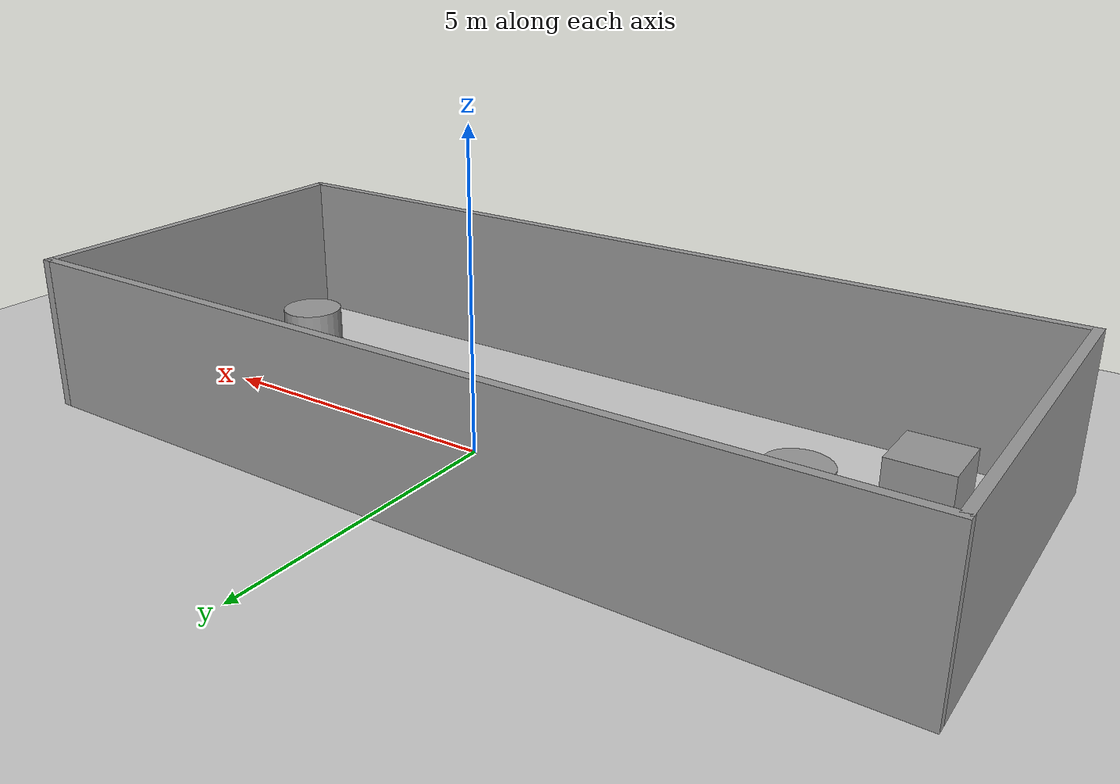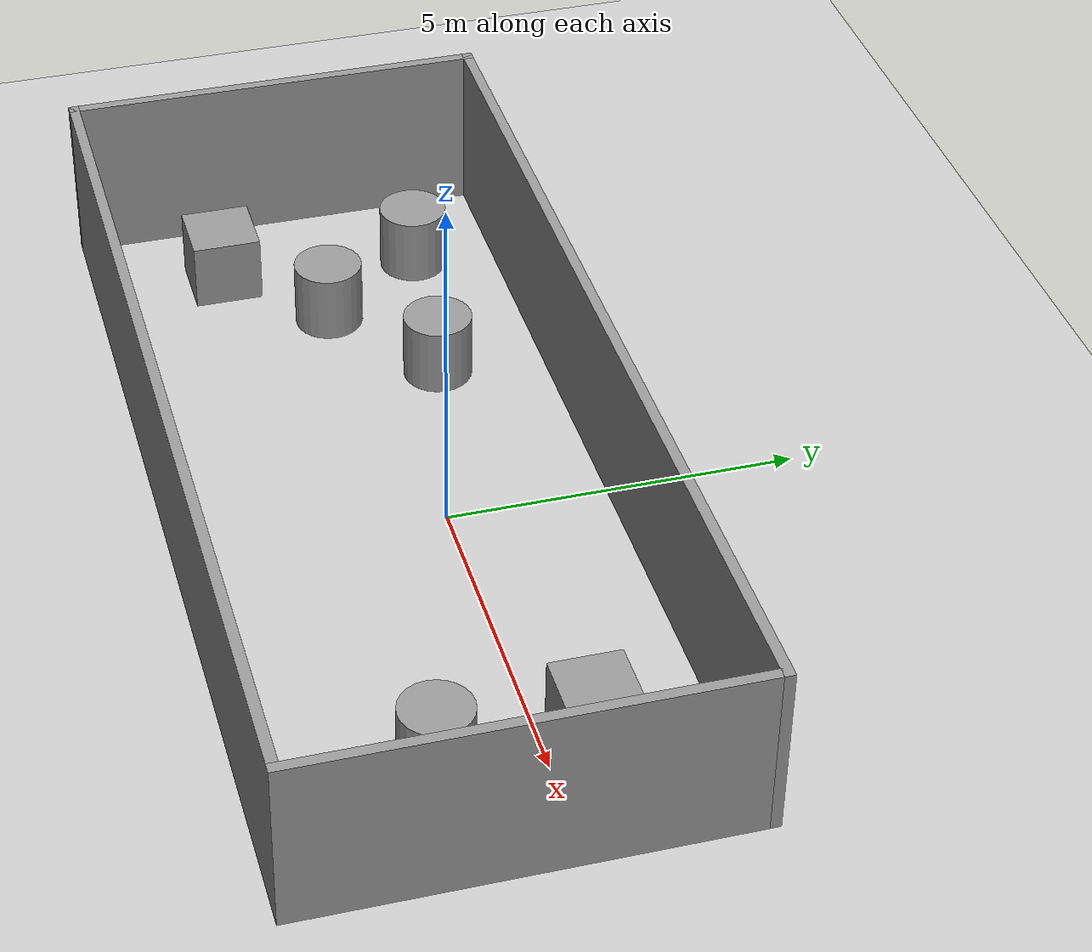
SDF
<sdf version="1.7">
 <world name="default">
  <light name="sun" type="directional">
   <pose>0 0 10 0 -0 0</pose>
   <diffuse>0.8 0.8 0.8 1</diffuse>
   <specular>0.2 0.2 0.2 1</specular>
   <attenuation>
    <range>1000</range>
    <constant>0.9</constant>
    <linear>0.01</linear>
    <quadratic>0.001</quadratic>
   </attenuation>
   <direction>-0.5 0.1 -0.9</direction>
   <spot><inner_angle>0</inner_angle><outer_angle>0</outer_angle><falloff>0</falloff></spot>
  </light>
  <model name="ground_plane">
   <static>1</static>
   <link name="link">
    <collision name="collision">
     <geometry><plane><normal>0 0 1</normal><size>100 100</size></plane></geometry>
     <surface>
      <contact><collide_bitmask>65535</collide_bitmask></contact>
      <friction><ode><mu>100</mu><mu2>50</mu2></ode></friction>
     </surface>
    </collision>
    <visual name="visual">
     <cast_shadows>0</cast_shadows>
     <geometry><plane><normal>0 0 1</normal><size>100 100</size></plane></geometry>
     <material>
      <script><uri>file://media/materials/scripts/gazebo.material</uri><name>Gazebo/Grey</name></script>
     </material>
    </visual>
   </link>
  </model>
  <gravity>0 0 -9.8</gravity>
  <magnetic_field>6e-06 2.3e-05 -4.2e-05</magnetic_field>
  <atmosphere type="adiabatic"/>
  <physics type="ode">
   <max_step_size>0.001</max_step_size>
   <real_time_factor>1</real_time_factor>
   <real_time_update_rate>1000</real_time_update_rate>
  </physics>
  <scene><ambient>0.4 0.4 0.4 1</ambient><background>0.7 0.7 0.7 1</background><shadows>1</shadows></scene>
  <spherical_coordinates>
   <surface_model>EARTH_WGS84</surface_model>
   <latitude_deg>0</latitude_deg>
   <longitude_deg>0</longitude_deg>
   <elevation>0</elevation>
   <heading_deg>0</heading_deg>
  </spherical_coordinates>
  <model name="simple_room">
   <pose>-0.569625 -0.6859 0 0 -0 0</pose>
   <link name="Wall_3">
    <collision name="Wall_3_Collision">
     <geometry><box><size>14.5 0.15 2.5</size></box></geometry>
     <pose>0 0 1.25 0 -0 0</pose>
    </collision>
    <visual name="Wall_3_Visual">
     <pose>0 0 1.25 0 -0 0</pose>
     <geometry><box><size>14.5 0.15 2.5</size></box></geometry>
     <material>
      <script><uri>file://media/materials/scripts/gazebo.material</uri><name>Gazebo/Grey</name></script>
      <ambient>1 1 1 1</ambient>
     </material>
     <meta><layer>0</layer></meta>
    </visual>
    <pose>0 -3.05 0 0 -0 0</pose>
   </link>
   <link name="Wall_4">
    <collision name="Wall_4_Collision">
     <geometry><box><size>6.25 0.15 2.5</size></box></geometry>
     <pose>0 0 1.25 0 -0 0</pose>
    </collision>
    <visual name="Wall_4_Visual">
     <pose>0 0 1.25 0 -0 0</pose>
     <geometry><box><size>6.25 0.15 2.5</size></box></geometry>
     <material>
      <script><uri>file://media/materials/scripts/gazebo.material</uri><name>Gazebo/Grey</name></script>
      <ambient>1 1 1 1</ambient>
     </material>
     <meta><layer>0</layer></meta>
    </visual>
    <pose>7.175 -0 0 0 -0 1.5708</pose>
   </link>
   <link name="Wall_5">
    <collision name="Wall_5_Collision">
     <geometry><box><size>14.5 0.15 2.5</size></box></geometry>
     <pose>0 0 1.25 0 -0 0</pose>
    </collision>
    <visual name="Wall_5_Visual">
     <pose>0 0 1.25 0 -0 0</pose>
     <geometry><box><size>14.5 0.15 2.5</size></box></geometry>
     <material>
      <script><uri>file://media/materials/scripts/gazebo.material</uri><name>Gazebo/Grey</name></script>
      <ambient>1 1 1 1</ambient>
     </material>
     <meta><layer>0</layer></meta>
    </visual>
    <pose>0 3.05 0 0 -0 3.14159</pose>
   </link>
   <link name="Wall_6">
    <collision name="Wall_6_Collision">
     <geometry><box><size>6.25 0.15 2.5</size></box></geometry>
     <pose>0 0 1.25 0 -0 0</pose>
    </collision>
    <visual name="Wall_6_Visual">
     <pose>0 0 1.25 0 -0 0</pose>
     <geometry><box><size>6.25 0.15 2.5</size></box></geometry>
     <material>
      <script><uri>file://media/materials/scripts/gazebo.material</uri><name>Gazebo/Grey</name></script>
      <ambient>1 1 1 1</ambient>
     </material>
     <meta><layer>0</layer></meta>
    </visual>
    <pose>-7.175 -0 0 0 -0 -1.5708</pose>
   </link>
   <static>1</static>
  </model>
  <model name="unit_box">
   <pose>4.70076 0.675161 0.499995 -1e-05 -0 -0</pose>
   <link name="link">
    <inertial>
     <mass>1</mass>
     <inertia>
      <ixx>0.166667</ixx>
      <ixy>0</ixy>
      <ixz>0</ixz>
      <iyy>0.166667</iyy>
      <iyz>0</iyz>
      <izz>0.166667</izz>
     </inertia>
    </inertial>
    <collision name="collision"><geometry><box><size>1 1 1</size></box></geometry></collision>
    <visual name="visual">
     <geometry><box><size>1 1 1</size></box></geometry>
     <material>
      <script><name>Gazebo/Grey</name><uri>file://media/materials/scripts/gazebo.material</uri></script>
     </material>
    </visual>
   </link>
  </model>
  <model name="unit_cylinder">
   <pose>4.62155 -1.34411 0.499992 -3e-06 -4e-06 -0</pose>
   <link name="link">
    <inertial>
     <mass>1</mass>
     <inertia><ixx>0.145833</ixx><ixy>0</ixy><ixz>0</ixz><iyy>0.145833</iyy><iyz>0</iyz><izz>0.125</izz></inertia>
    </inertial>
    <collision name="collision">
     <geometry><cylinder><radius>0.5</radius><length>1</length></cylinder></geometry>
    </collision>
    <visual name="visual">
     <geometry><cylinder><radius>0.5</radius><length>1</length></cylinder></geometry>
     <material>
      <script><name>Gazebo/Grey</name><uri>file://media/materials/scripts/gazebo.material</uri></script>
     </material>
    </visual>
   </link>
  </model>
  <model name="unit_cylinder_0">
   <pose>-3.25802 0.720491 0.499993 -3e-06 -4e-06 -0</pose>
   <link name="link">
    <inertial>
     <mass>1</mass>
     <inertia><ixx>0.145833</ixx><ixy>0</ixy><ixz>0</ixz><iyy>0.145833</iyy><iyz>0</iyz><izz>0.125</izz></inertia>
    </inertial>
    <collision name="collision">
     <geometry><cylinder><radius>0.5</radius><length>1</length></cylinder></geometry>
    </collision>
    <visual name="visual">
     <geometry><cylinder><radius>0.5</radius><length>1</length></cylinder></geometry>
     <material>
      <script><name>Gazebo/Grey</name><uri>file://media/materials/scripts/gazebo.material</uri></script>
     </material>
    </visual>
   </link>
  </model>
  <model name="unit_cylinder_1">
   <pose>-4.93967 -0.522046 0.499993 -3e-06 -4e-06 -0</pose>
   <link name="link">
    <inertial>
     <mass>1</mass>
     <inertia><ixx>0.145833</ixx><ixy>0</ixy><ixz>0</ixz><iyy>0.145833</iyy><iyz>0</iyz><izz>0.125</izz></inertia>
    </inertial>
    <collision name="collision">
     <geometry><cylinder><radius>0.5</radius><length>1</length></cylinder></geometry>
    </collision>
    <visual name="visual">
     <geometry><cylinder><radius>0.5</radius><length>1</length></cylinder></geometry>
     <material>
      <script><name>Gazebo/Grey</name><uri>file://media/materials/scripts/gazebo.material</uri></script>
     </material>
    </visual>
   </link>
  </model>
  <model name="unit_cylinder_2">
   <pose>-6.06059 1.0552 0.499993 -3e-06 -4e-06 -0</pose>
   <link name="link">
    <inertial>
     <mass>1</mass>
     <inertia><ixx>0.145833</ixx><ixy>0</ixy><ixz>0</ixz><iyy>0.145833</iyy><iyz>0</iyz><izz>0.125</izz></inertia>
    </inertial>
    <collision name="collision">
     <geometry><cylinder><radius>0.5</radius><length>1</length></cylinder></geometry>
    </collision>
    <visual name="visual">
     <geometry><cylinder><radius>0.5</radius><length>1</length></cylinder></geometry>
     <material>
      <script><name>Gazebo/Grey</name><uri>file://media/materials/scripts/gazebo.material</uri></script>
     </material>
    </visual>
   </link>
  </model>
  <model name="unit_box_0">
   <pose>-6.2634 -1.87421 0.5 0 -0 0</pose>
   <link name="link">
    <inertial>
     <mass>1</mass>
     <inertia>
      <ixx>0.166667</ixx>
      <ixy>0</ixy>
      <ixz>0</ixz>
      <iyy>0.166667</iyy>
      <iyz>0</iyz>
      <izz>0.166667</izz>
     </inertia>
    </inertial>
    <collision name="collision"><geometry><box><size>1 1 1</size></box></geometry></collision>
    <visual name="visual">
     <geometry><box><size>1 1 1</size></box></geometry>
     <material>
      <script><name>Gazebo/Grey</name><uri>file://media/materials/scripts/gazebo.material</uri></script>
     </material>
    </visual>
   </link>
  </model>
 </world>
</sdf>
